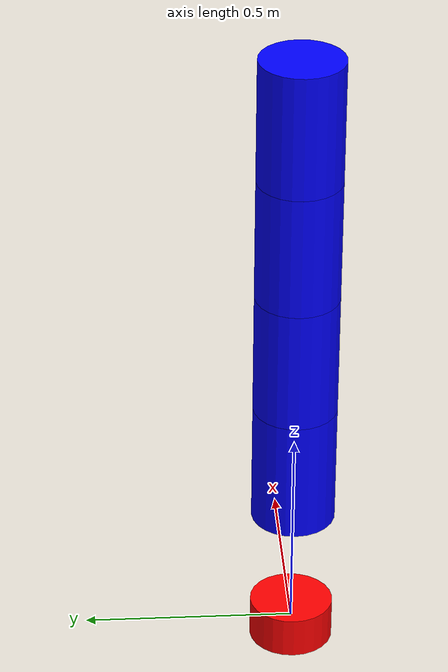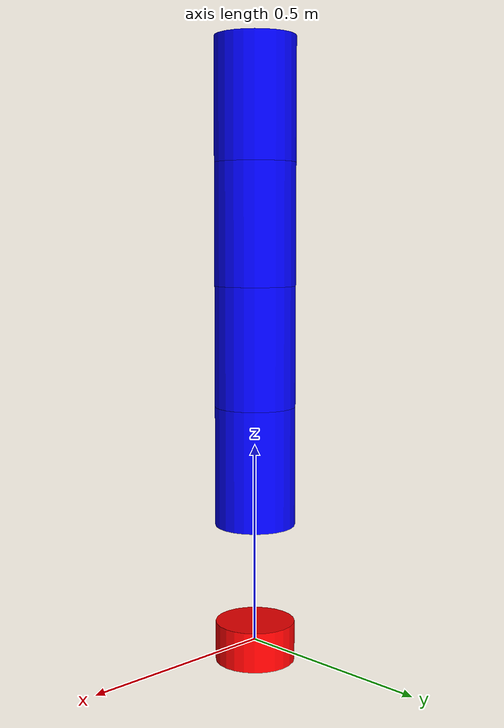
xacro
<?xml version="1.0"?>
<robot name="robot_arm1" xmlns:xacro="http://ros.org/wiki/xacro">

  <!-- 기본 링크 -->
  <link name="base_link">
    <visual>
      <geometry><cylinder length="0.1" radius="0.1"/></geometry>
      <material name="red"><color rgba="1 0 0 1"/></material>
    </visual>
  </link>

  <!-- 링크와 조인트 반복 -->
  <xacro:macro name="arm_segment" params="index parent_link length">
    <link name="link_${index}">
      <visual>
        <geometry><cylinder length="${length}" radius="0.1"/></geometry>
        <origin xyz="0 0 ${length/2}" rpy="0 0 0"/>
        <material name="blue"><color rgba="0 0 1 1"/></material>
      </visual>
    </link>

    <joint name="joint_${index}" type="revolute">
      <parent link="${parent_link}"/>
      <child link="link_${index}"/>
      <origin xyz="0 0 ${length}" rpy="0 0 0"/>
      <axis xyz="0 0 1"/>
      <limit lower="-3.14" upper="3.14" effort="1.0" velocity="1.0"/>
    </joint>
  </xacro:macro>

  <!-- 4개의 조인트 생성 -->
  <xacro:arm_segment index="1" parent_link="base_link" length="0.3"/>
  <xacro:arm_segment index="2" parent_link="link_1" length="0.3"/>
  <xacro:arm_segment index="3" parent_link="link_2" length="0.3"/>
  <xacro:arm_segment index="4" parent_link="link_3" length="0.3"/>

</robot>
